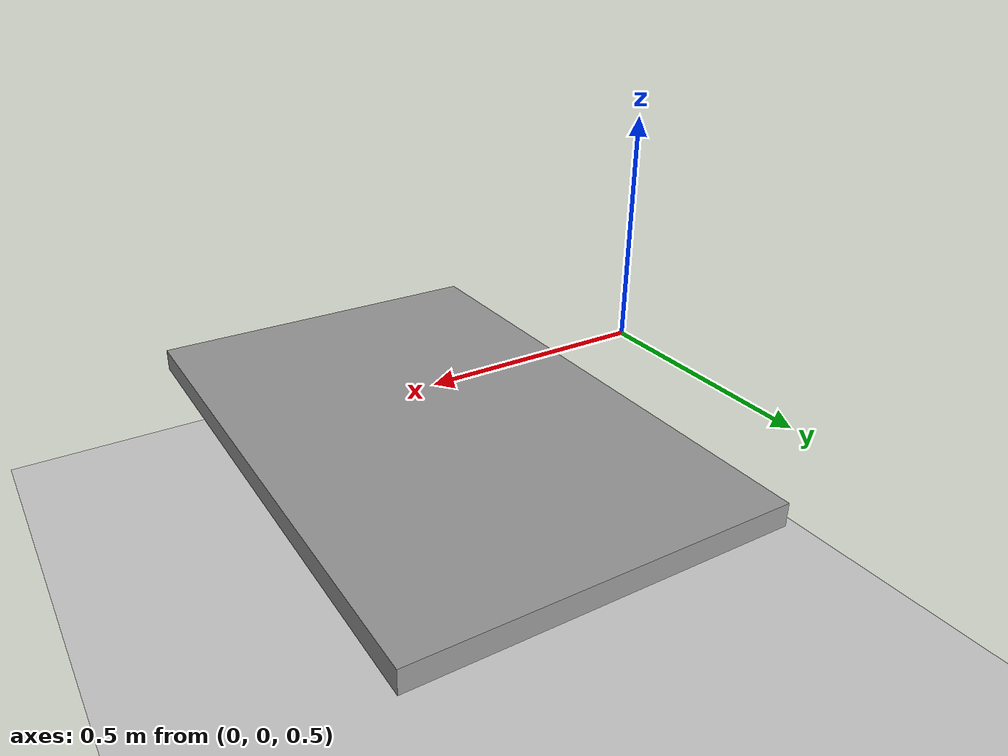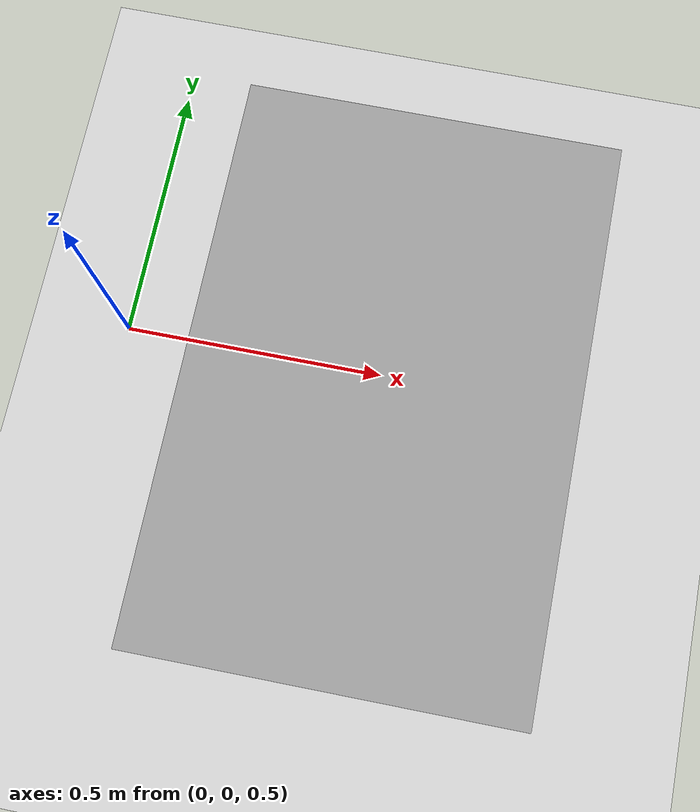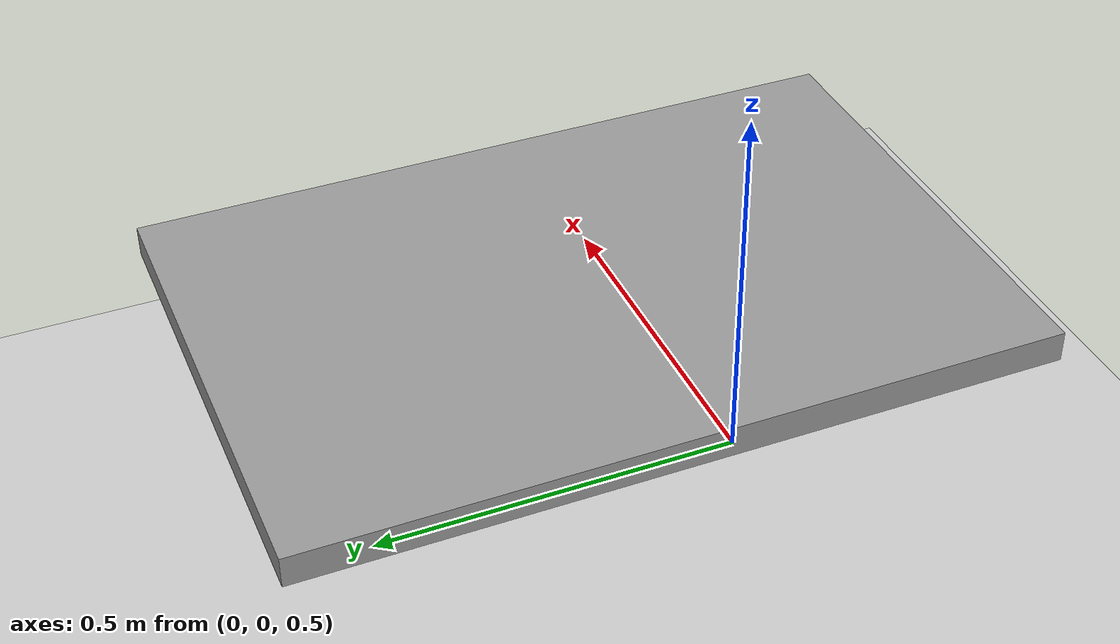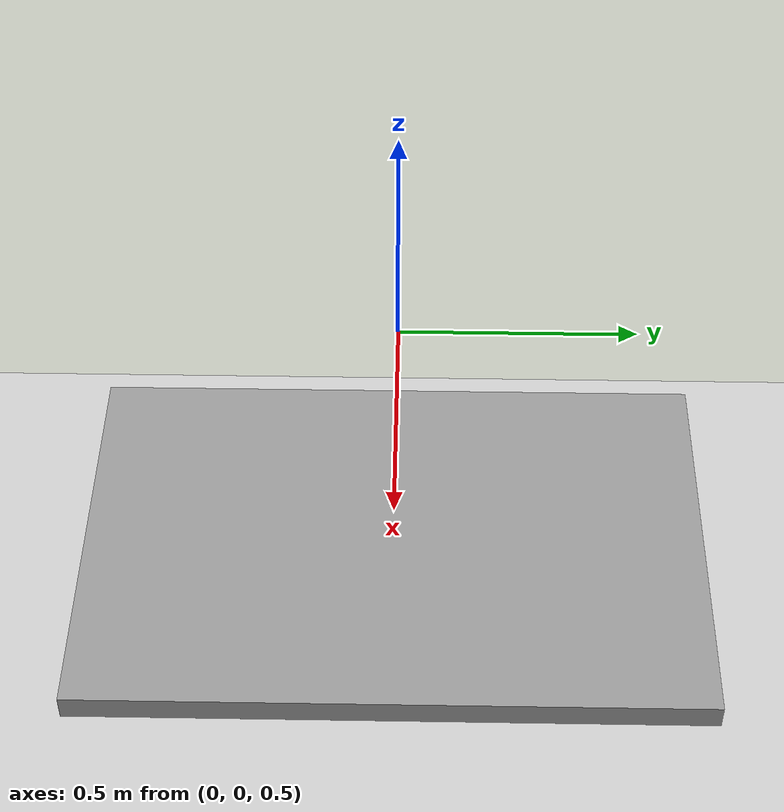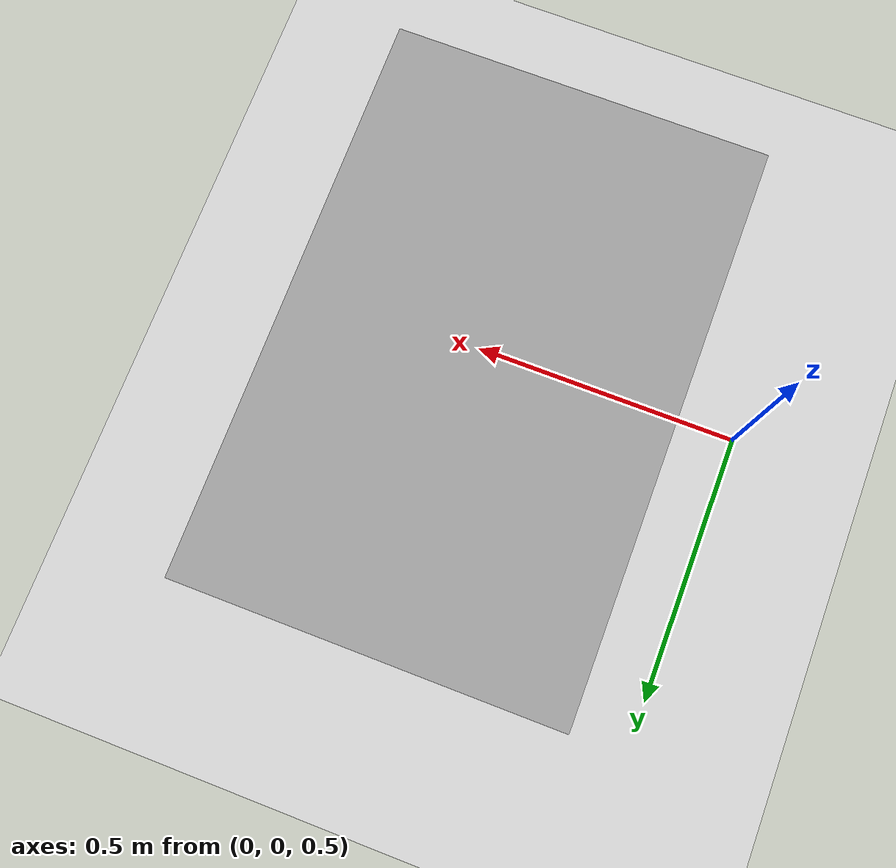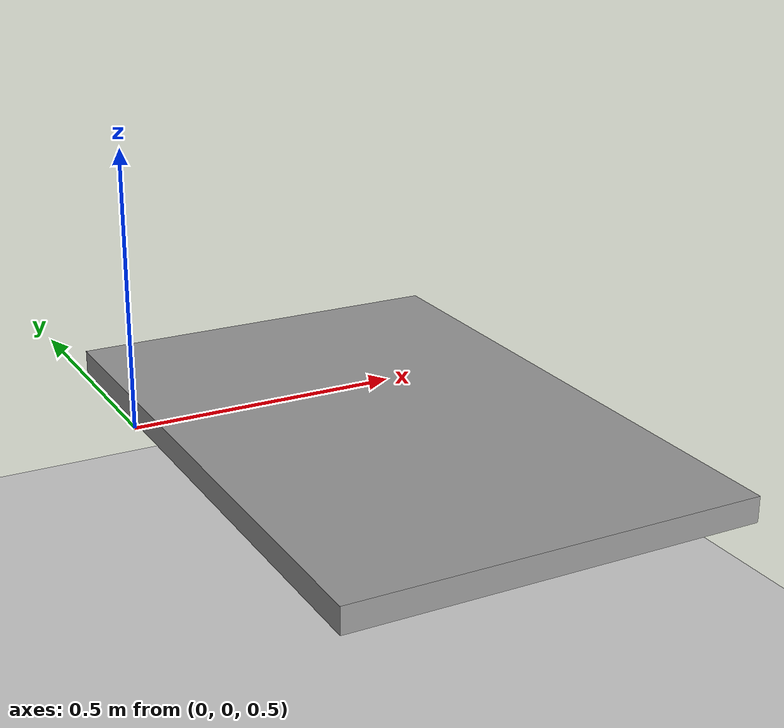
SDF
<?xml version="1.0"?>
<sdf version="1.7">
  <world name="panda_world">
    <physics name="default_physics" type="ode">
      <max_step_size>0.001</max_step_size>
      <real_time_factor>1.0</real_time_factor>
      <real_time_update_rate>1000</real_time_update_rate>
    </physics>

    <scene>
      <ambient>0.4 0.4 0.4 1.0</ambient>
      <background>0.7 0.7 0.7 1.0</background>
      <shadows>true</shadows>
    </scene>

    <!-- Ground plane -->
    <include>
      <uri>model://ground_plane</uri>
    </include>

    <!-- Sun light -->
    <include>
      <uri>model://sun</uri>
    </include>

    <!-- Simple table/work surface for the Panda arm -->
    <model name="work_table">
      <static>true</static>
      <pose>0.5 0 0.4 0 0 0</pose>
      <link name="table_link">
        <collision name="table_collision">
          <geometry>
            <box>
              <size>0.8 1.2 0.05</size>
            </box>
          </geometry>
        </collision>
        <visual name="table_visual">
          <geometry>
            <box>
              <size>0.8 1.2 0.05</size>
            </box>
          </geometry>
          <material>
            <ambient>0.3 0.3 0.3 1.0</ambient>
            <diffuse>0.6 0.6 0.6 1.0</diffuse>
          </material>
        </visual>
      </link>
    </model>

    <gravity>0 0 -9.81</gravity>
  </world>
</sdf>
